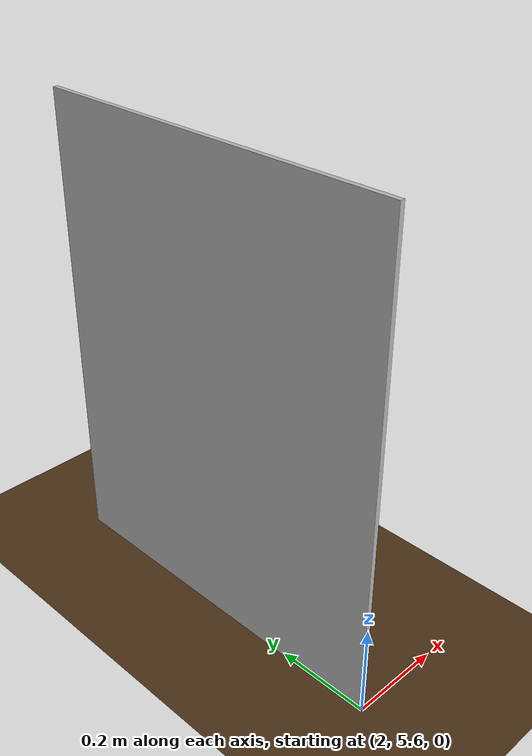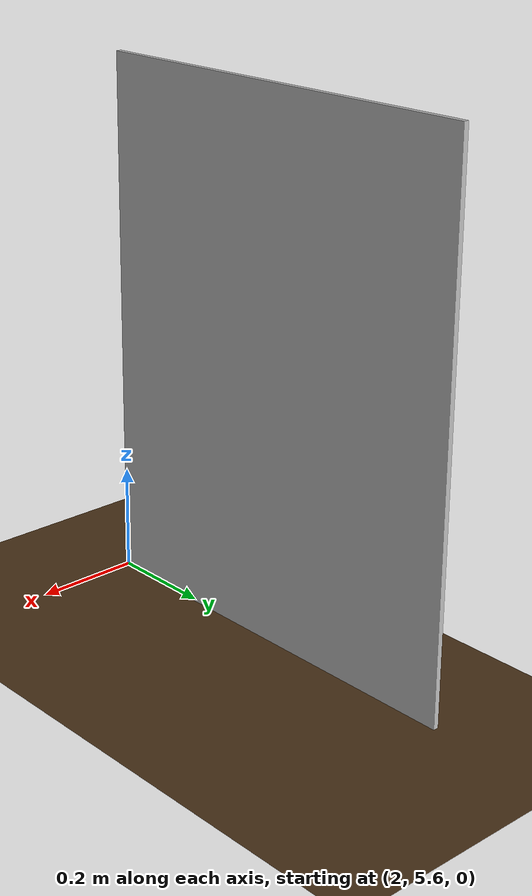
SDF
<?xml version="1.0" ?>
<sdf version="1.8">
  <world name="agribot_farm">
    <physics name="1ms" type="ignored">
      <max_step_size>0.001</max_step_size>
      <real_time_factor>1.0</real_time_factor>
    </physics>

    <plugin filename="gz-sim-physics-system" name="gz::sim::systems::Physics"/>
    <plugin filename="gz-sim-user-commands-system" name="gz::sim::systems::UserCommands"/>
    <plugin filename="gz-sim-scene-broadcaster-system" name="gz::sim::systems::SceneBroadcaster"/>
    <plugin filename="gz-sim-sensors-system" name="gz::sim::systems::Sensors">
      <render_engine>ogre2</render_engine>
    </plugin>

    <light type="directional" name="farm_sun">
      <cast_shadows>true</cast_shadows>
      <pose>0 0 10 0 0 0</pose>
      <diffuse>0.9 0.9 0.8 1</diffuse>
      <direction>-0.5 0.1 -0.9</direction>
    </light>

    <model name="ground_plane">
      <static>true</static>
      <link name="link">
        <collision name="collision">
          <geometry><plane><normal>0 0 1</normal><size>100 100</size></plane></geometry>
        </collision>
        <visual name="visual">
          <geometry><plane><normal>0 0 1</normal><size>100 100</size></plane></geometry>
          <material><ambient>0.3 0.2 0.1 1</ambient><diffuse>0.3 0.2 0.1 1</diffuse></material>
        </visual>
      </link>
    </model>

    <model name='plant_r0_c0'>
      <static>true</static>
      <pose>2.0 6.0 0.5 0 0 0</pose>
      <link name='link'>
        <collision name='collision'>
          <geometry><box><size>0.2 0.2 1.0</size></box></geometry>
        </collision>
        <visual name='visual_v'>
          <geometry><box><size>0.01 0.8 1.0</size></box></geometry>
          <material><pbr><metal><albedo_map>textures/healthy_leaf.jpg</albedo_map></metal></pbr></material>
        </visual>
      </link>
    </model>
    </world>
</sdf>
